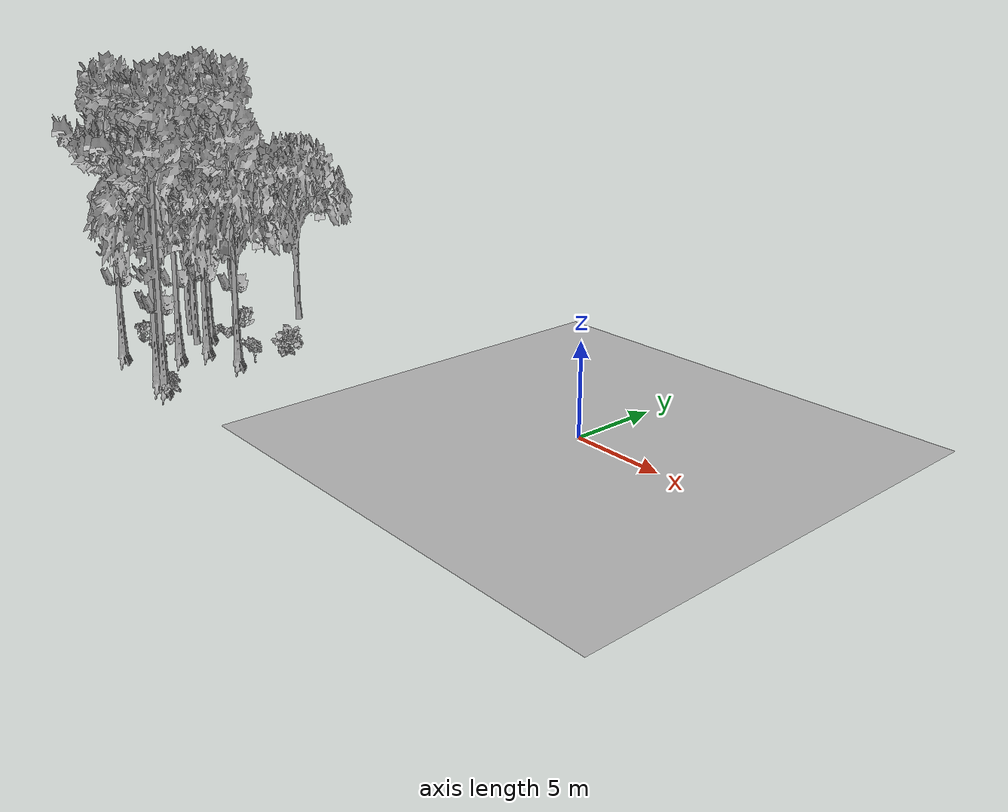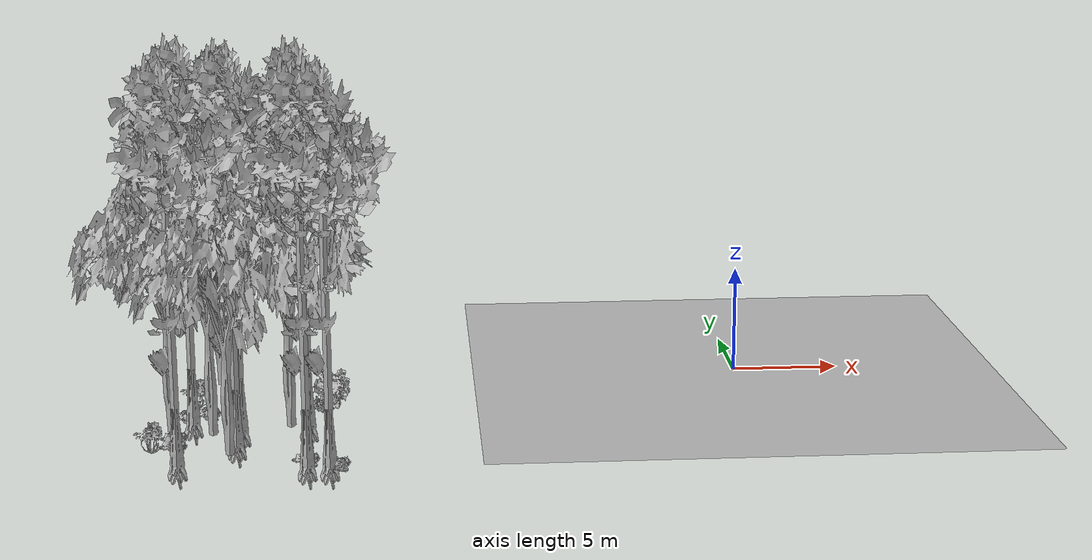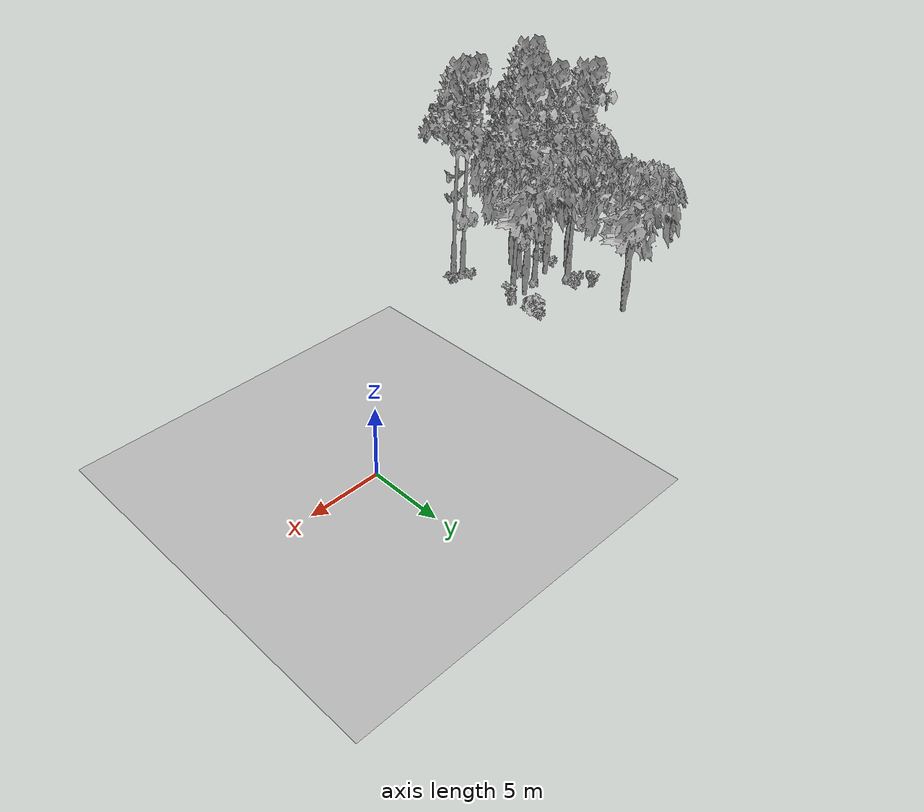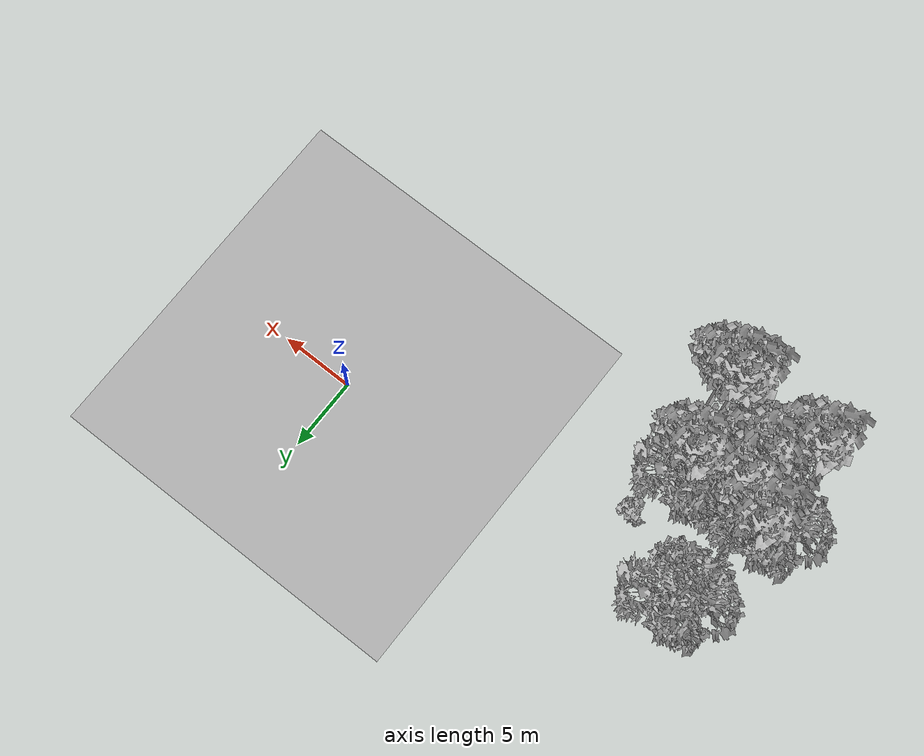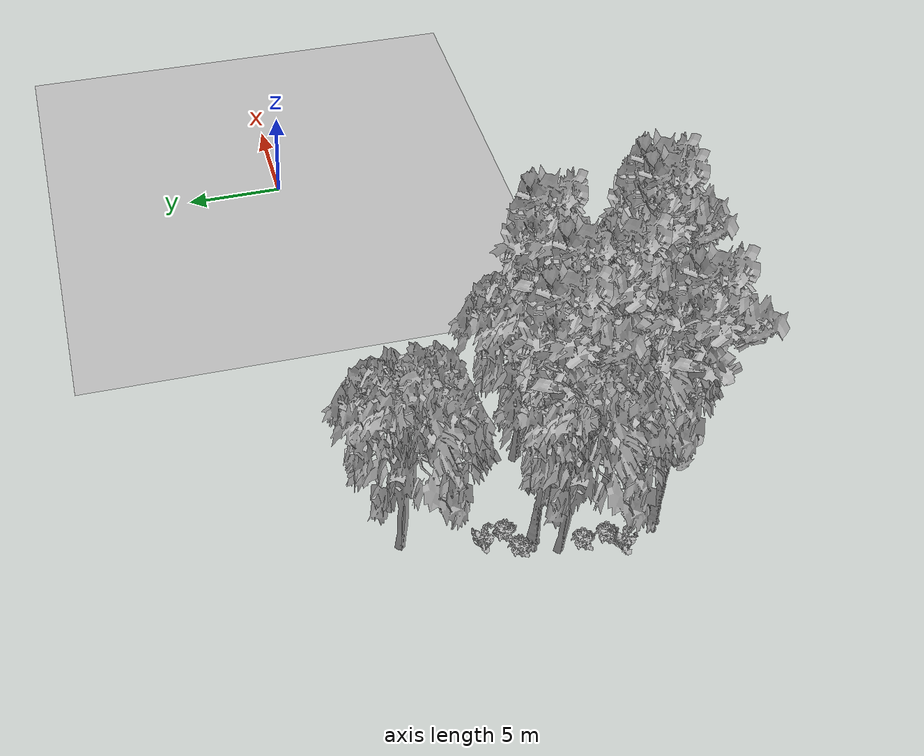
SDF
<sdf version="1.7">
 <world name="default">
  <model name="ground_plane">
   <static>1</static>
   <link name="link">
    <collision name="collision">
     <pose>-50 0 0 0 -0 0</pose>
     <geometry><plane><normal>0 0 1</normal><size>80 80</size></plane></geometry>
     <surface><contact><ode><min_depth>0.01</min_depth><max_vel>0</max_vel></ode></contact></surface>
    </collision>
    <visual name="grass">
     <cast_shadows>0</cast_shadows>
     <geometry>
      <mesh>
       <scale>0.46714285714285714 0.46714285714285714 0.1</scale>
       <uri>file://grass_plane/meshes/grass_plane.dae</uri>
      </mesh>
     </geometry>
    </visual>
   </link>
  </model>
  <model name="Tree 53">
   <static>1</static>
   <pose>-23.196752916990377 -9.511901608060825 0 1.57079 -0 0</pose>
   <link name="link">
    <collision name="collision">
     <geometry><mesh><scale>3.5 5 3.5</scale><uri>model://tree_9/meshes/tree_9.obj</uri></mesh></geometry>
    </collision>
    <visual name="visual">
     <geometry><mesh><scale>3.5 5 3.5</scale><uri>model://tree_9/meshes/tree_9.obj</uri></mesh></geometry>
    </visual>
   </link>
  </model>
  <model name="Tree 74">
   <static>1</static>
   <pose>-19.09268684070085 -12.465737061972327 0 1.57079 -0 0</pose>
   <link name="link">
    <collision name="collision">
     <geometry><mesh><scale>3.5 5 3.5</scale><uri>model://tree_9/meshes/tree_9.obj</uri></mesh></geometry>
    </collision>
    <visual name="visual">
     <geometry><mesh><scale>3.5 5 3.5</scale><uri>model://tree_9/meshes/tree_9.obj</uri></mesh></geometry>
    </visual>
   </link>
  </model>
  <model name="Tree 115">
   <static>1</static>
   <pose>-20.048028482303483 -12.410830708049865 0 1.57079 -0 0</pose>
   <link name="link">
    <collision name="collision">
     <geometry><mesh><scale>3.5 5 3.5</scale><uri>model://tree_9/meshes/tree_9.obj</uri></mesh></geometry>
    </collision>
    <visual name="visual">
     <geometry><mesh><scale>3.5 5 3.5</scale><uri>model://tree_9/meshes/tree_9.obj</uri></mesh></geometry>
    </visual>
   </link>
  </model>
  <model name="Tree 122">
   <static>1</static>
   <pose>-21.055259815906616 -6.926194533944283 0 1.57079 -0 0</pose>
   <link name="link">
    <collision name="collision">
     <geometry><mesh><scale>3.5 5 3.5</scale><uri>model://tree_2/meshes/tree_2.obj</uri></mesh></geometry>
    </collision>
    <visual name="visual">
     <geometry><mesh><scale>3.5 5 3.5</scale><uri>model://tree_2/meshes/tree_2.obj</uri></mesh></geometry>
    </visual>
   </link>
  </model>
  <model name="Tree 189">
   <static>1</static>
   <pose>-23.51402514326755 -10.492977399572759 0 1.57079 -0 0</pose>
   <link name="link">
    <collision name="collision">
     <geometry><mesh><scale>3.5 5 3.5</scale><uri>model://tree_2/meshes/tree_2.obj</uri></mesh></geometry>
    </collision>
    <visual name="visual">
     <geometry><mesh><scale>3.5 5 3.5</scale><uri>model://tree_2/meshes/tree_2.obj</uri></mesh></geometry>
    </visual>
   </link>
  </model>
  <model name="Tree 225">
   <static>1</static>
   <pose>-25.523089525868038 -11.945699186454853 0 1.57079 -0 0</pose>
   <link name="link">
    <collision name="collision">
     <geometry><mesh><scale>3.5 5 3.5</scale><uri>model://tree_9/meshes/tree_9.obj</uri></mesh></geometry>
    </collision>
    <visual name="visual">
     <geometry><mesh><scale>3.5 5 3.5</scale><uri>model://tree_9/meshes/tree_9.obj</uri></mesh></geometry>
    </visual>
   </link>
  </model>
  <model name="Tree 270">
   <static>1</static>
   <pose>-26.292512513716826 -7.293551851125827 0 1.57079 -0 0</pose>
   <link name="link">
    <collision name="collision">
     <geometry><mesh><scale>3.5 5 3.5</scale><uri>model://tree_2/meshes/tree_2.obj</uri></mesh></geometry>
    </collision>
    <visual name="visual">
     <geometry><mesh><scale>3.5 5 3.5</scale><uri>model://tree_2/meshes/tree_2.obj</uri></mesh></geometry>
    </visual>
   </link>
  </model>
  <model name="Tree 283">
   <static>1</static>
   <pose>-25.335901175319915 -6.379669697328126 0 1.57079 -0 0</pose>
   <link name="link">
    <collision name="collision">
     <geometry><mesh><scale>3.5 5 3.5</scale><uri>model://tree_9/meshes/tree_9.obj</uri></mesh></geometry>
    </collision>
    <visual name="visual">
     <geometry><mesh><scale>3.5 5 3.5</scale><uri>model://tree_9/meshes/tree_9.obj</uri></mesh></geometry>
    </visual>
   </link>
  </model>
  <model name="Tree 288">
   <static>1</static>
   <pose>-23.116518347148926 -7.786742671768039 0 1.57079 -0 0</pose>
   <link name="link">
    <collision name="collision">
     <geometry><mesh><scale>3.5 5 3.5</scale><uri>model://tree_9/meshes/tree_9.obj</uri></mesh></geometry>
    </collision>
    <visual name="visual">
     <geometry><mesh><scale>3.5 5 3.5</scale><uri>model://tree_9/meshes/tree_9.obj</uri></mesh></geometry>
    </visual>
   </link>
  </model>
  <model name="Tree 552">
   <static>1</static>
   <pose>-20.165311506729925 -7.355270052161771 0 1.57079 -0 0</pose>
   <link name="link">
    <collision name="collision">
     <geometry><mesh><scale>3.5 5 3.5</scale><uri>model://tree_9/meshes/tree_9.obj</uri></mesh></geometry>
    </collision>
    <visual name="visual">
     <geometry><mesh><scale>3.5 5 3.5</scale><uri>model://tree_9/meshes/tree_9.obj</uri></mesh></geometry>
    </visual>
   </link>
  </model>
  <model name="Tree 593">
   <static>1</static>
   <pose>-24.597782037106484 -0.5478154375713373 0 1.57079 -0 0</pose>
   <link name="link">
    <collision name="collision">
     <geometry><mesh><scale>3.5 5 3.5</scale><uri>model://tree_2/meshes/tree_2.obj</uri></mesh></geometry>
    </collision>
    <visual name="visual">
     <geometry><mesh><scale>3.5 5 3.5</scale><uri>model://tree_2/meshes/tree_2.obj</uri></mesh></geometry>
    </visual>
   </link>
  </model>
  <model name="Tree 608">
   <static>1</static>
   <pose>-24.434558885486318 -7.8268001440395665 0 1.57079 -0 0</pose>
   <link name="link">
    <collision name="collision">
     <geometry><mesh><scale>3.5 5 3.5</scale><uri>model://tree_2/meshes/tree_2.obj</uri></mesh></geometry>
    </collision>
    <visual name="visual">
     <geometry><mesh><scale>3.5 5 3.5</scale><uri>model://tree_2/meshes/tree_2.obj</uri></mesh></geometry>
    </visual>
   </link>
  </model>
  <model name="Bush 25">
   <static>1</static>
   <pose>-19.76148898232388 -4.479215043938147 0 1.57079 -0 0</pose>
   <link name="link">
    <collision name="collision">
     <geometry><mesh><scale>2 2 2</scale><uri>model://bush_2/meshes/bush_2.obj</uri></mesh></geometry>
     <surface><contact><collide_without_contact>false</collide_without_contact></contact></surface>
    </collision>
    <visual name="visual">
     <geometry><mesh><scale>2 2 2</scale><uri>model://bush_2/meshes/bush_2.obj</uri></mesh></geometry>
    </visual>
   </link>
  </model>
  <model name="Bush 131">
   <static>1</static>
   <pose>-18.778305585954048 -12.351678642436958 0 1.57079 -0 0</pose>
   <link name="link">
    <collision name="collision">
     <geometry><mesh><scale>2 2 2</scale><uri>model://bush_2/meshes/bush_2.obj</uri></mesh></geometry>
     <surface><contact><collide_without_contact>false</collide_without_contact></contact></surface>
    </collision>
    <visual name="visual">
     <geometry><mesh><scale>2 2 2</scale><uri>model://bush_2/meshes/bush_2.obj</uri></mesh></geometry>
    </visual>
   </link>
  </model>
  <model name="Bush 136">
   <static>1</static>
   <pose>-24.758071054227884 -5.322474402452656 0 1.57079 -0 0</pose>
   <link name="link">
    <collision name="collision">
     <geometry><mesh><scale>2 2 2</scale><uri>model://bush_2/meshes/bush_2.obj</uri></mesh></geometry>
     <surface><contact><collide_without_contact>false</collide_without_contact></contact></surface>
    </collision>
    <visual name="visual">
     <geometry><mesh><scale>2 2 2</scale><uri>model://bush_2/meshes/bush_2.obj</uri></mesh></geometry>
    </visual>
   </link>
  </model>
  <model name="Bush 153">
   <static>1</static>
   <pose>-19.202292873973512 -4.742358317709815 0 1.57079 -0 0</pose>
   <link name="link">
    <collision name="collision">
     <geometry><mesh><scale>2 2 2</scale><uri>model://bush_1/meshes/bush_1.obj</uri></mesh></geometry>
     <surface><contact><collide_without_contact>false</collide_without_contact></contact></surface>
    </collision>
    <visual name="visual">
     <geometry><mesh><scale>2 2 2</scale><uri>model://bush_1/meshes/bush_1.obj</uri></mesh></geometry>
    </visual>
   </link>
  </model>
  <model name="Bush 159">
   <static>1</static>
   <pose>-26.76974646627826 -10.085789496499586 0 1.57079 -0 0</pose>
   <link name="link">
    <collision name="collision">
     <geometry><mesh><scale>2 2 2</scale><uri>model://bush_4/meshes/bush_4.obj</uri></mesh></geometry>
     <surface><contact><collide_without_contact>false</collide_without_contact></contact></surface>
    </collision>
    <visual name="visual">
     <geometry><mesh><scale>2 2 2</scale><uri>model://bush_4/meshes/bush_4.obj</uri></mesh></geometry>
    </visual>
   </link>
  </model>
  <model name="Bush 247">
   <static>1</static>
   <pose>-25.877186640385418 -9.716317619739296 0 1.57079 -0 0</pose>
   <link name="link">
    <collision name="collision">
     <geometry><mesh><scale>2 2 2</scale><uri>model://bush_2/meshes/bush_2.obj</uri></mesh></geometry>
     <surface><contact><collide_without_contact>false</collide_without_contact></contact></surface>
    </collision>
    <visual name="visual">
     <geometry><mesh><scale>2 2 2</scale><uri>model://bush_2/meshes/bush_2.obj</uri></mesh></geometry>
    </visual>
   </link>
  </model>
  <model name="Bush 310">
   <static>1</static>
   <pose>-25.67784604031616 -5.732708165535314 0 1.57079 -0 0</pose>
   <link name="link">
    <collision name="collision">
     <geometry><mesh><scale>2 2 2</scale><uri>model://bush_2/meshes/bush_2.obj</uri></mesh></geometry>
     <surface><contact><collide_without_contact>false</collide_without_contact></contact></surface>
    </collision>
    <visual name="visual">
     <geometry><mesh><scale>2 2 2</scale><uri>model://bush_2/meshes/bush_2.obj</uri></mesh></geometry>
    </visual>
   </link>
  </model>
  <model name="Bush 313">
   <static>1</static>
   <pose>-25.336887344687547 -4.1155364552123 0 1.57079 -0 0</pose>
   <link name="link">
    <collision name="collision">
     <geometry><mesh><scale>2 2 2</scale><uri>model://bush_4/meshes/bush_4.obj</uri></mesh></geometry>
     <surface><contact><collide_without_contact>false</collide_without_contact></contact></surface>
    </collision>
    <visual name="visual">
     <geometry><mesh><scale>2 2 2</scale><uri>model://bush_4/meshes/bush_4.obj</uri></mesh></geometry>
    </visual>
   </link>
  </model>
  <model name="Bush 391">
   <static>1</static>
   <pose>-25.950033638749968 -8.575728725352345 0 1.57079 -0 0</pose>
   <link name="link">
    <collision name="collision">
     <geometry><mesh><scale>2 2 2</scale><uri>model://bush_2/meshes/bush_2.obj</uri></mesh></geometry>
     <surface><contact><collide_without_contact>false</collide_without_contact></contact></surface>
    </collision>
    <visual name="visual">
     <geometry><mesh><scale>2 2 2</scale><uri>model://bush_2/meshes/bush_2.obj</uri></mesh></geometry>
    </visual>
   </link>
  </model>
  <model name="Bush 453">
   <static>1</static>
   <pose>-19.263768000727126 -6.761253553314631 0 1.57079 -0 0</pose>
   <link name="link">
    <collision name="collision">
     <geometry><mesh><scale>2 2 2</scale><uri>model://bush_5/meshes/bush_5.obj</uri></mesh></geometry>
     <surface><contact><collide_without_contact>false</collide_without_contact></contact></surface>
    </collision>
    <visual name="visual">
     <geometry><mesh><scale>2 2 2</scale><uri>model://bush_5/meshes/bush_5.obj</uri></mesh></geometry>
    </visual>
   </link>
  </model>
  <model name="Bush 483">
   <static>1</static>
   <pose>-20.097436920190482 -11.730512395546981 0 1.57079 -0 0</pose>
   <link name="link">
    <collision name="collision">
     <geometry><mesh><scale>2 2 2</scale><uri>model://bush_2/meshes/bush_2.obj</uri></mesh></geometry>
     <surface><contact><collide_without_contact>false</collide_without_contact></contact></surface>
    </collision>
    <visual name="visual">
     <geometry><mesh><scale>2 2 2</scale><uri>model://bush_2/meshes/bush_2.obj</uri></mesh></geometry>
    </visual>
   </link>
  </model>
 </world>
</sdf>
